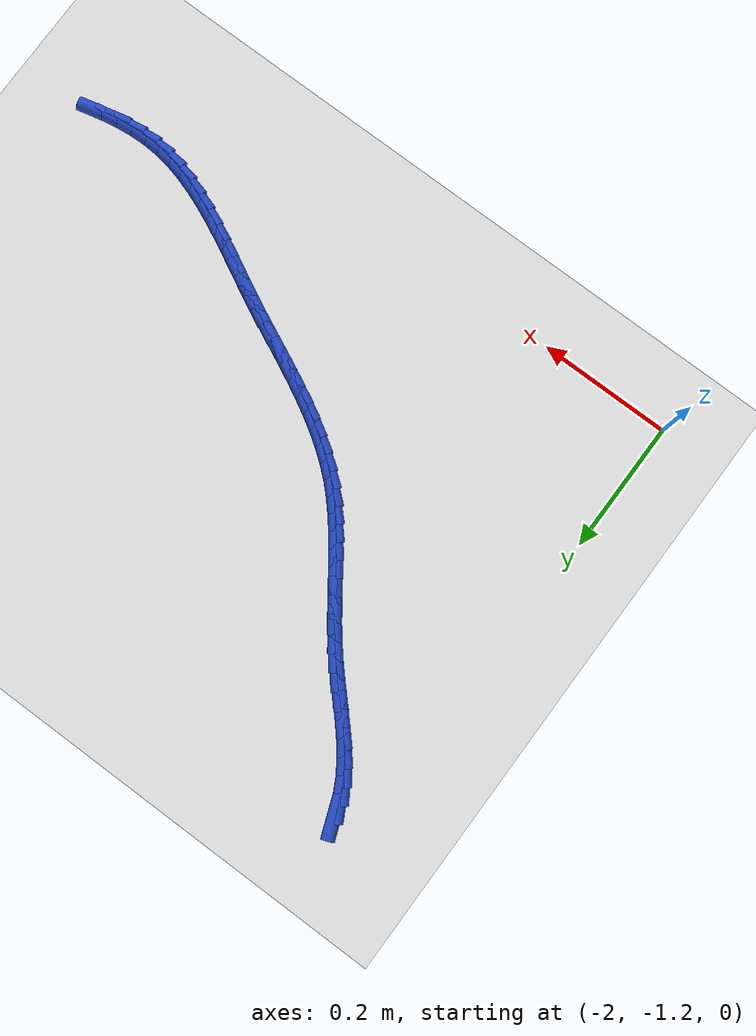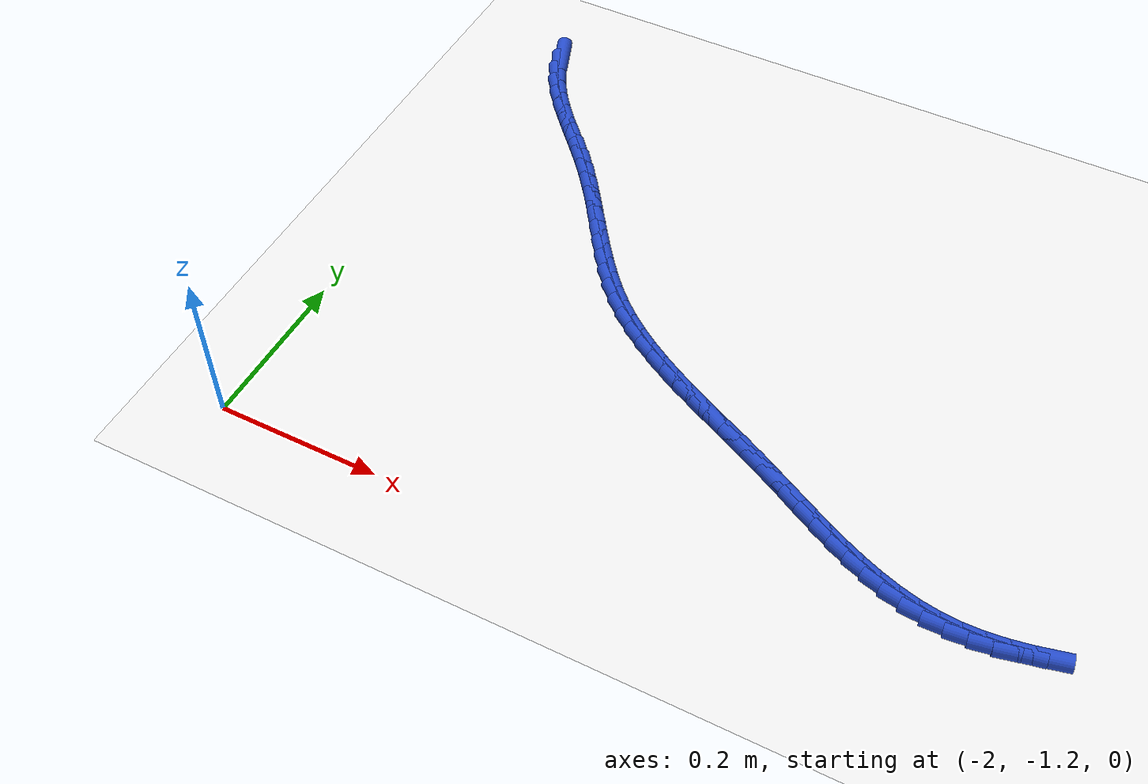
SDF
<sdf version="1.6">
 <world name="default">
  <model name="ground_plane">
   <static>1</static>
   <link name="link">
    <collision name="collision">
     <geometry><plane><normal>0 0 1</normal><size>100 100</size></plane></geometry>
     <surface><friction><ode><mu>100</mu><mu2>50</mu2></ode></friction></surface>
    </collision>
    <visual name="visual">
     <cast_shadows>0</cast_shadows>
     <geometry><plane><normal>0 0 1</normal><size>100 100</size></plane></geometry>
     <material>
      <script><uri>file://media/materials/scripts/gazebo.material</uri><name>Gazebo/WhiteGlow</name></script>
     </material>
    </visual>
   </link>
  </model>
  <model name="line">
   <link name="link_151">
    <pose>-1.9452013261652379 -0.5103250480839024 0.01 0 1.57 -1.204664241512646</pose>
    <collision name="collision">
     <geometry><cylinder><radius>0.01</radius><length>0.08</length></cylinder></geometry>
    </collision>
    <visual name="visual">
     <material>
      <script><name>Gazebo/Blue</name><uri>file://media/materials/scripts/gazebo.material</uri></script>
     </material>
     <geometry><cylinder><radius>0.01</radius><length>0.08</length></cylinder></geometry>
    </visual>
   </link>
   <link name="link_152">
    <pose>-1.936587519144538 -0.5327907692273207 0.01 0 1.57 -1.084435146172485</pose>
    <collision name="collision">
     <geometry><cylinder><radius>0.01</radius><length>0.08</length></cylinder></geometry>
    </collision>
    <visual name="visual">
     <material>
      <script><name>Gazebo/Blue</name><uri>file://media/materials/scripts/gazebo.material</uri></script>
     </material>
     <geometry><cylinder><radius>0.01</radius><length>0.08</length></cylinder></geometry>
    </visual>
   </link>
   <link name="link_153">
    <pose>-1.9253178532671242 -0.5541056422530259 0.01 0 1.57 -0.9814682080631477</pose>
    <collision name="collision">
     <geometry><cylinder><radius>0.01</radius><length>0.08</length></cylinder></geometry>
    </collision>
    <visual name="visual">
     <material>
      <script><name>Gazebo/Blue</name><uri>file://media/materials/scripts/gazebo.material</uri></script>
     </material>
     <geometry><cylinder><radius>0.01</radius><length>0.08</length></cylinder></geometry>
    </visual>
   </link>
   <link name="link_154">
    <pose>-1.9117194082779787 -0.5744448448743261 0.01 0 1.57 -0.9049590636020668</pose>
    <collision name="collision">
     <geometry><cylinder><radius>0.01</radius><length>0.08</length></cylinder></geometry>
    </collision>
    <visual name="visual">
     <material>
      <script><name>Gazebo/Blue</name><uri>file://media/materials/scripts/gazebo.material</uri></script>
     </material>
     <geometry><cylinder><radius>0.01</radius><length>0.08</length></cylinder></geometry>
    </visual>
   </link>
   <link name="link_155">
    <pose>-1.8963085411786482 -0.5940640049390221 0.01 0 1.57 -0.853549692915901</pose>
    <collision name="collision">
     <geometry><cylinder><radius>0.01</radius><length>0.08</length></cylinder></geometry>
    </collision>
    <visual name="visual">
     <material>
      <script><name>Gazebo/Blue</name><uri>file://media/materials/scripts/gazebo.material</uri></script>
     </material>
     <geometry><cylinder><radius>0.01</radius><length>0.08</length></cylinder></geometry>
    </visual>
   </link>
   <link name="link_156">
    <pose>-1.8796016130285806 -0.6132187520196822 0.01 0 1.57 -0.825432531574992</pose>
    <collision name="collision">
     <geometry><cylinder><radius>0.01</radius><length>0.08</length></cylinder></geometry>
    </collision>
    <visual name="visual">
     <material>
      <script><name>Gazebo/Blue</name><uri>file://media/materials/scripts/gazebo.material</uri></script>
     </material>
     <geometry><cylinder><radius>0.01</radius><length>0.08</length></cylinder></geometry>
    </visual>
   </link>
   <link name="link_157">
    <pose>-1.862114984887229 -0.6321647156888726 0.01 0 1.57 -0.8192107704314051</pose>
    <collision name="collision">
     <geometry><cylinder><radius>0.01</radius><length>0.08</length></cylinder></geometry>
    </collision>
    <visual name="visual">
     <material>
      <script><name>Gazebo/Blue</name><uri>file://media/materials/scripts/gazebo.material</uri></script>
     </material>
     <geometry><cylinder><radius>0.01</radius><length>0.08</length></cylinder></geometry>
    </visual>
   </link>
   <link name="link_158">
    <pose>-1.8443650178140425 -0.6511575255191613 0.01 0 1.57 -0.8342375654430779</pose>
    <collision name="collision">
     <geometry><cylinder><radius>0.01</radius><length>0.08</length></cylinder></geometry>
    </collision>
    <visual name="visual">
     <material>
      <script><name>Gazebo/Blue</name><uri>file://media/materials/scripts/gazebo.material</uri></script>
     </material>
     <geometry><cylinder><radius>0.01</radius><length>0.08</length></cylinder></geometry>
    </visual>
   </link>
   <link name="link_159">
    <pose>-1.8268680728684719 -0.6704528110831158 0.01 0 1.57 -0.8693736512189506</pose>
    <collision name="collision">
     <geometry><cylinder><radius>0.01</radius><length>0.08</length></cylinder></geometry>
    </collision>
    <visual name="visual">
     <material>
      <script><name>Gazebo/Blue</name><uri>file://media/materials/scripts/gazebo.material</uri></script>
     </material>
     <geometry><cylinder><radius>0.01</radius><length>0.08</length></cylinder></geometry>
    </visual>
   </link>
   <link name="link_160">
    <pose>-1.810112345666078 -0.690288569557604 0.01 0 1.57 -0.9068972395484792</pose>
    <collision name="collision">
     <geometry><cylinder><radius>0.01</radius><length>0.08</length></cylinder></geometry>
    </collision>
    <visual name="visual">
     <material>
      <script><name>Gazebo/Blue</name><uri>file://media/materials/scripts/gazebo.material</uri></script>
     </material>
     <geometry><cylinder><radius>0.01</radius><length>0.08</length></cylinder></geometry>
    </visual>
   </link>
   <link name="link_161">
    <pose>-1.7941821672303369 -0.7106499670146637 0.01 0 1.57 -0.9331955056309537</pose>
    <collision name="collision">
     <geometry><cylinder><radius>0.01</radius><length>0.08</length></cylinder></geometry>
    </collision>
    <visual name="visual">
     <material>
      <script><name>Gazebo/Blue</name><uri>file://media/materials/scripts/gazebo.material</uri></script>
     </material>
     <geometry><cylinder><radius>0.01</radius><length>0.08</length></cylinder></geometry>
    </visual>
   </link>
   <link name="link_162">
    <pose>-1.7788597227484189 -0.7313330173522873 0.01 0 1.57 -0.9478326056696728</pose>
    <collision name="collision">
     <geometry><cylinder><radius>0.01</radius><length>0.08</length></cylinder></geometry>
    </collision>
    <visual name="visual">
     <material>
      <script><name>Gazebo/Blue</name><uri>file://media/materials/scripts/gazebo.material</uri></script>
     </material>
     <geometry><cylinder><radius>0.01</radius><length>0.08</length></cylinder></geometry>
    </visual>
   </link>
   <link name="link_163">
    <pose>-1.7639199141901212 -0.7521291749603272 0.01 0 1.57 -0.9506734386755552</pose>
    <collision name="collision">
     <geometry><cylinder><radius>0.01</radius><length>0.08</length></cylinder></geometry>
    </collision>
    <visual name="visual">
     <material>
      <script><name>Gazebo/Blue</name><uri>file://media/materials/scripts/gazebo.material</uri></script>
     </material>
     <geometry><cylinder><radius>0.01</radius><length>0.08</length></cylinder></geometry>
    </visual>
   </link>
   <link name="link_164">
    <pose>-1.7491376435252421 -0.7728298942286356 0.01 0 1.57 -0.9414922455691744</pose>
    <collision name="collision">
     <geometry><cylinder><radius>0.01</radius><length>0.08</length></cylinder></geometry>
    </collision>
    <visual name="visual">
     <material>
      <script><name>Gazebo/Blue</name><uri>file://media/materials/scripts/gazebo.material</uri></script>
     </material>
     <geometry><cylinder><radius>0.01</radius><length>0.08</length></cylinder></geometry>
    </visual>
   </link>
   <link name="link_165">
    <pose>-1.734287812723579 -0.7932266295470658 0.01 0 1.57 -0.9199545439363234</pose>
    <collision name="collision">
     <geometry><cylinder><radius>0.01</radius><length>0.08</length></cylinder></geometry>
    </collision>
    <visual name="visual">
     <material>
      <script><name>Gazebo/Blue</name><uri>file://media/materials/scripts/gazebo.material</uri></script>
     </material>
     <geometry><cylinder><radius>0.01</radius><length>0.08</length></cylinder></geometry>
    </visual>
   </link>
   <link name="link_166">
    <pose>-1.71914532375493 -0.8131108353054688 0.01 0 1.57 -0.8856509985451404</pose>
    <collision name="collision">
     <geometry><cylinder><radius>0.01</radius><length>0.08</length></cylinder></geometry>
    </collision>
    <visual name="visual">
     <material>
      <script><name>Gazebo/Blue</name><uri>file://media/materials/scripts/gazebo.material</uri></script>
     </material>
     <geometry><cylinder><radius>0.01</radius><length>0.08</length></cylinder></geometry>
    </visual>
   </link>
   <link name="link_167">
    <pose>-1.7034850785890934 -0.8322739658936978 0.01 0 1.57 -0.8381951712368951</pose>
    <collision name="collision">
     <geometry><cylinder><radius>0.01</radius><length>0.08</length></cylinder></geometry>
    </collision>
    <visual name="visual">
     <material>
      <script><name>Gazebo/Blue</name><uri>file://media/materials/scripts/gazebo.material</uri></script>
     </material>
     <geometry><cylinder><radius>0.01</radius><length>0.08</length></cylinder></geometry>
    </visual>
   </link>
   <link name="link_168">
    <pose>-1.6870819791958662 -0.8505074757016051 0.01 0 1.57 -0.7774113048019822</pose>
    <collision name="collision">
     <geometry><cylinder><radius>0.01</radius><length>0.08</length></cylinder></geometry>
    </collision>
    <visual name="visual">
     <material>
      <script><name>Gazebo/Blue</name><uri>file://media/materials/scripts/gazebo.material</uri></script>
     </material>
     <geometry><cylinder><radius>0.01</radius><length>0.08</length></cylinder></geometry>
    </visual>
   </link>
   <link name="link_169">
    <pose>-1.669711132256354 -0.8676030384471928 0.01 0 1.57 -0.7087493528439233</pose>
    <collision name="collision">
     <geometry><cylinder><radius>0.01</radius><length>0.08</length></cylinder></geometry>
    </collision>
    <visual name="visual">
     <material>
      <script><name>Gazebo/Blue</name><uri>file://media/materials/scripts/gazebo.material</uri></script>
     </material>
     <geometry><cylinder><radius>0.01</radius><length>0.08</length></cylinder></geometry>
    </visual>
   </link>
   <link name="link_170">
    <pose>-1.6512338322374995 -0.8834446696335342 0.01 0 1.57 -0.6461055124325186</pose>
    <collision name="collision">
     <geometry><cylinder><radius>0.01</radius><length>0.08</length></cylinder></geometry>
    </collision>
    <visual name="visual">
     <material>
      <script><name>Gazebo/Blue</name><uri>file://media/materials/scripts/gazebo.material</uri></script>
     </material>
     <geometry><cylinder><radius>0.01</radius><length>0.08</length></cylinder></geometry>
    </visual>
   </link>
   <link name="link_171">
    <pose>-1.6317307922722937 -0.8981514704095915 0.01 0 1.57 -0.5920216471360045</pose>
    <collision name="collision">
     <geometry><cylinder><radius>0.01</radius><length>0.08</length></cylinder></geometry>
    </collision>
    <visual name="visual">
     <material>
      <script><name>Gazebo/Blue</name><uri>file://media/materials/scripts/gazebo.material</uri></script>
     </material>
     <geometry><cylinder><radius>0.01</radius><length>0.08</length></cylinder></geometry>
    </visual>
   </link>
   <link name="link_172">
    <pose>-1.6113171310044383 -0.9118794040648789 0.01 0 1.57 -0.5466203858549261</pose>
    <collision name="collision">
     <geometry><cylinder><radius>0.01</radius><length>0.08</length></cylinder></geometry>
    </collision>
    <visual name="visual">
     <material>
      <script><name>Gazebo/Blue</name><uri>file://media/materials/scripts/gazebo.material</uri></script>
     </material>
     <geometry><cylinder><radius>0.01</radius><length>0.08</length></cylinder></geometry>
    </visual>
   </link>
   <link name="link_173">
    <pose>-1.5901079670776381 -0.9247844338889091 0.01 0 1.57 -0.5097904947178956</pose>
    <collision name="collision">
     <geometry><cylinder><radius>0.01</radius><length>0.08</length></cylinder></geometry>
    </collision>
    <visual name="visual">
     <material>
      <script><name>Gazebo/Blue</name><uri>file://media/materials/scripts/gazebo.material</uri></script>
     </material>
     <geometry><cylinder><radius>0.01</radius><length>0.08</length></cylinder></geometry>
    </visual>
   </link>
   <link name="link_174">
    <pose>-1.5682184191355955 -0.9370225231711965 0.01 0 1.57 -0.48129175760864296</pose>
    <collision name="collision">
     <geometry><cylinder><radius>0.01</radius><length>0.08</length></cylinder></geometry>
    </collision>
    <visual name="visual">
     <material>
      <script><name>Gazebo/Blue</name><uri>file://media/materials/scripts/gazebo.material</uri></script>
     </material>
     <geometry><cylinder><radius>0.01</radius><length>0.08</length></cylinder></geometry>
    </visual>
   </link>
   <link name="link_175">
    <pose>-1.5457636058220106 -0.9487496352012535 0.01 0 1.57 -0.4608361747707228</pose>
    <collision name="collision">
     <geometry><cylinder><radius>0.01</radius><length>0.08</length></cylinder></geometry>
    </collision>
    <visual name="visual">
     <material>
      <script><name>Gazebo/Blue</name><uri>file://media/materials/scripts/gazebo.material</uri></script>
     </material>
     <geometry><cylinder><radius>0.01</radius><length>0.08</length></cylinder></geometry>
    </visual>
   </link>
   <link name="link_176">
    <pose>-1.5228586457805877 -0.9601217332685945 0.01 0 1.57 -0.4481441425451232</pose>
    <collision name="collision">
     <geometry><cylinder><radius>0.01</radius><length>0.08</length></cylinder></geometry>
    </collision>
    <visual name="visual">
     <material>
      <script><name>Gazebo/Blue</name><uri>file://media/materials/scripts/gazebo.material</uri></script>
     </material>
     <geometry><cylinder><radius>0.01</radius><length>0.08</length></cylinder></geometry>
    </visual>
   </link>
   <link name="link_177">
    <pose>-1.499618657655029 -0.9712947806627331 0.01 0 1.57 -0.4429790176482207</pose>
    <collision name="collision">
     <geometry><cylinder><radius>0.01</radius><length>0.08</length></cylinder></geometry>
    </collision>
    <visual name="visual">
     <material>
      <script><name>Gazebo/Blue</name><uri>file://media/materials/scripts/gazebo.material</uri></script>
     </material>
     <geometry><cylinder><radius>0.01</radius><length>0.08</length></cylinder></geometry>
    </visual>
   </link>
   <link name="link_178">
    <pose>-1.4761587600890371 -0.9824247406731825 0.01 0 1.57 -0.4451646081538884</pose>
    <collision name="collision">
     <geometry><cylinder><radius>0.01</radius><length>0.08</length></cylinder></geometry>
    </collision>
    <visual name="visual">
     <material>
      <script><name>Gazebo/Blue</name><uri>file://media/materials/scripts/gazebo.material</uri></script>
     </material>
     <geometry><cylinder><radius>0.01</radius><length>0.08</length></cylinder></geometry>
    </visual>
   </link>
   <link name="link_179">
    <pose>-1.452594071726314 -0.9936675765894563 0.01 0 1.57 -0.45458940052641006</pose>
    <collision name="collision">
     <geometry><cylinder><radius>0.01</radius><length>0.08</length></cylinder></geometry>
    </collision>
    <visual name="visual">
     <material>
      <script><name>Gazebo/Blue</name><uri>file://media/materials/scripts/gazebo.material</uri></script>
     </material>
     <geometry><cylinder><radius>0.01</radius><length>0.08</length></cylinder></geometry>
    </visual>
   </link>
   <link name="link_180">
    <pose>-1.429039711210562 -1.0051792517010678 0.01 0 1.57 -0.4697082989183731</pose>
    <collision name="collision">
     <geometry><cylinder><radius>0.01</radius><length>0.08</length></cylinder></geometry>
    </collision>
    <visual name="visual">
     <material>
      <script><name>Gazebo/Blue</name><uri>file://media/materials/scripts/gazebo.material</uri></script>
     </material>
     <geometry><cylinder><radius>0.01</radius><length>0.08</length></cylinder></geometry>
    </visual>
   </link>
   <link name="link_181">
    <pose>-1.4055973063465734 -1.0170785925686057 0.01 0 1.57 -0.47955179664894887</pose>
    <collision name="collision">
     <geometry><cylinder><radius>0.01</radius><length>0.08</length></cylinder></geometry>
    </collision>
    <visual name="visual">
     <material>
      <script><name>Gazebo/Blue</name><uri>file://media/materials/scripts/gazebo.material</uri></script>
     </material>
     <geometry><cylinder><radius>0.01</radius><length>0.08</length></cylinder></geometry>
    </visual>
   </link>
   <link name="link_182">
    <pose>-1.3822689099554046 -1.0292103220291242 0.01 0 1.57 -0.47926650743439003</pose>
    <collision name="collision">
     <geometry><cylinder><radius>0.01</radius><length>0.08</length></cylinder></geometry>
    </collision>
    <visual name="visual">
     <material>
      <script><name>Gazebo/Blue</name><uri>file://media/materials/scripts/gazebo.material</uri></script>
     </material>
     <geometry><cylinder><radius>0.01</radius><length>0.08</length></cylinder></geometry>
    </visual>
   </link>
   <link name="link_183">
    <pose>-1.3590119961663305 -1.04129644951368 0.01 0 1.57 -0.46872761786665507</pose>
    <collision name="collision">
     <geometry><cylinder><radius>0.01</radius><length>0.08</length></cylinder></geometry>
    </collision>
    <visual name="visual">
     <material>
      <script><name>Gazebo/Blue</name><uri>file://media/materials/scripts/gazebo.material</uri></script>
     </material>
     <geometry><cylinder><radius>0.01</radius><length>0.08</length></cylinder></geometry>
    </visual>
   </link>
   <link name="link_184">
    <pose>-1.3357838299247766 -1.0530584086252404 0.01 0 1.57 -0.4476245447560509</pose>
    <collision name="collision">
     <geometry><cylinder><radius>0.01</radius><length>0.08</length></cylinder></geometry>
    </collision>
    <visual name="visual">
     <material>
      <script><name>Gazebo/Blue</name><uri>file://media/materials/scripts/gazebo.material</uri></script>
     </material>
     <geometry><cylinder><radius>0.01</radius><length>0.08</length></cylinder></geometry>
    </visual>
   </link>
   <link name="link_185">
    <pose>-1.3125416761761677 -1.0642176329667725 0.01 0 1.57 -0.41545642477053707</pose>
    <collision name="collision">
     <geometry><cylinder><radius>0.01</radius><length>0.08</length></cylinder></geometry>
    </collision>
    <visual name="visual">
     <material>
      <script><name>Gazebo/Blue</name><uri>file://media/materials/scripts/gazebo.material</uri></script>
     </material>
     <geometry><cylinder><radius>0.01</radius><length>0.08</length></cylinder></geometry>
    </visual>
   </link>
   <link name="link_186">
    <pose>-1.2892427998659284 -1.074495556141244 0.01 0 1.57 -0.37158544540362787</pose>
    <collision name="collision">
     <geometry><cylinder><radius>0.01</radius><length>0.08</length></cylinder></geometry>
    </collision>
    <visual name="visual">
     <material>
      <script><name>Gazebo/Blue</name><uri>file://media/materials/scripts/gazebo.material</uri></script>
     </material>
     <geometry><cylinder><radius>0.01</radius><length>0.08</length></cylinder></geometry>
    </visual>
   </link>
   <link name="link_187">
    <pose>-1.2658444659394839 -1.083613611751622 0.01 0 1.57 -0.3153438227444227</pose>
    <collision name="collision">
     <geometry><cylinder><radius>0.01</radius><length>0.08</length></cylinder></geometry>
    </collision>
    <visual name="visual">
     <material>
      <script><name>Gazebo/Blue</name><uri>file://media/materials/scripts/gazebo.material</uri></script>
     </material>
     <geometry><cylinder><radius>0.01</radius><length>0.08</length></cylinder></geometry>
    </visual>
   </link>
   <link name="link_188">
    <pose>-1.2423039393422586 -1.0912932334008747 0.01 0 1.57 -0.24621825539062878</pose>
    <collision name="collision">
     <geometry><cylinder><radius>0.01</radius><length>0.08</length></cylinder></geometry>
    </collision>
    <visual name="visual">
     <material>
      <script><name>Gazebo/Blue</name><uri>file://media/materials/scripts/gazebo.material</uri></script>
     </material>
     <geometry><cylinder><radius>0.01</radius><length>0.08</length></cylinder></geometry>
    </visual>
   </link>
   <link name="link_189">
    <pose>-1.2185784850196786 -1.0972558546919684 0.01 0 1.57 -0.1641276592907195</pose>
    <collision name="collision">
     <geometry><cylinder><radius>0.01</radius><length>0.08</length></cylinder></geometry>
    </collision>
    <visual name="visual">
     <material>
      <script><name>Gazebo/Blue</name><uri>file://media/materials/scripts/gazebo.material</uri></script>
     </material>
     <geometry><cylinder><radius>0.01</radius><length>0.08</length></cylinder></geometry>
    </visual>
   </link>
   <link name="link_190">
    <pose>-1.1946253679171683 -1.1012229092278714 0.01 0 1.57 -0.07005963488882538</pose>
    <collision name="collision">
     <geometry><cylinder><radius>0.01</radius><length>0.08</length></cylinder></geometry>
    </collision>
    <visual name="visual">
     <material>
      <script><name>Gazebo/Blue</name><uri>file://media/materials/scripts/gazebo.material</uri></script>
     </material>
     <geometry><cylinder><radius>0.01</radius><length>0.08</length></cylinder></geometry>
    </visual>
   </link>
   <link name="link_191">
    <pose>-1.1704032104904858 -1.1029226866794513 0.01 0 1.57 0.024346719511476166</pose>
    <collision name="collision">
     <geometry><cylinder><radius>0.01</radius><length>0.08</length></cylinder></geometry>
    </collision>
    <visual name="visual">
     <material>
      <script><name>Gazebo/Blue</name><uri>file://media/materials/scripts/gazebo.material</uri></script>
     </material>
     <geometry><cylinder><radius>0.01</radius><length>0.08</length></cylinder></geometry>
    </visual>
   </link>
   <link name="link_192">
    <pose>-1.1459187447045354 -1.102326452445435 0.01 0 1.57 0.1056954804348352</pose>
    <collision name="collision">
     <geometry><cylinder><radius>0.01</radius><length>0.08</length></cylinder></geometry>
    </collision>
    <visual name="visual">
     <material>
      <script><name>Gazebo/Blue</name><uri>file://media/materials/scripts/gazebo.material</uri></script>
     </material>
     <geometry><cylinder><radius>0.01</radius><length>0.08</length></cylinder></geometry>
    </visual>
   </link>
   <link name="link_193">
    <pose>-1.1212386268374852 -1.0997081179895454 0.01 0 1.57 0.17350439993737551</pose>
    <collision name="collision">
     <geometry><cylinder><radius>0.01</radius><length>0.08</length></cylinder></geometry>
    </collision>
    <visual name="visual">
     <material>
      <script><name>Gazebo/Blue</name><uri>file://media/materials/scripts/gazebo.material</uri></script>
     </material>
     <geometry><cylinder><radius>0.01</radius><length>0.08</length></cylinder></geometry>
    </visual>
   </link>
   <link name="link_194">
    <pose>-1.0964332694182028 -1.0953605656144103 0.01 0 1.57 0.228590122351995</pose>
    <collision name="collision">
     <geometry><cylinder><radius>0.01</radius><length>0.08</length></cylinder></geometry>
    </collision>
    <visual name="visual">
     <material>
      <script><name>Gazebo/Blue</name><uri>file://media/materials/scripts/gazebo.material</uri></script>
     </material>
     <geometry><cylinder><radius>0.01</radius><length>0.08</length></cylinder></geometry>
    </visual>
   </link>
  </model>
 </world>
</sdf>
